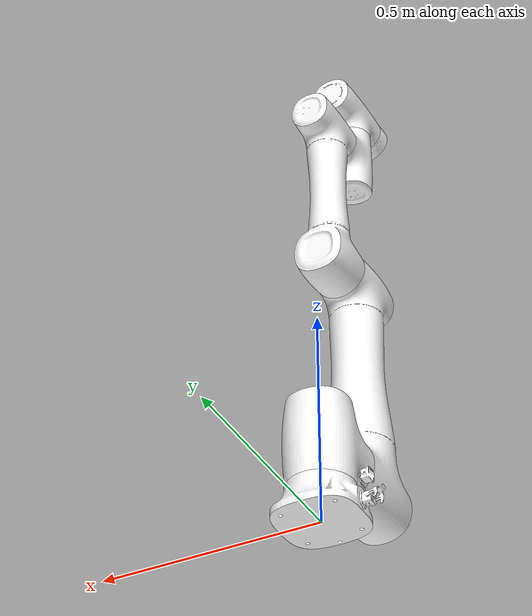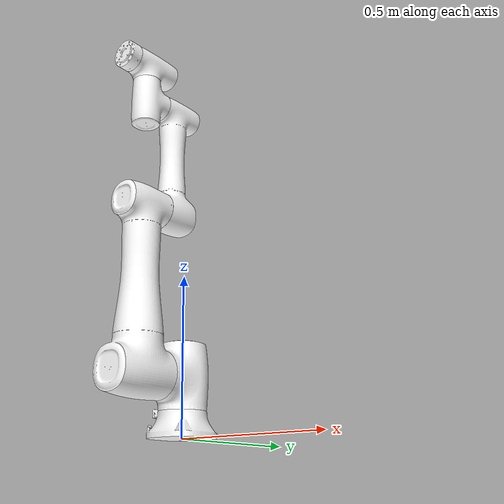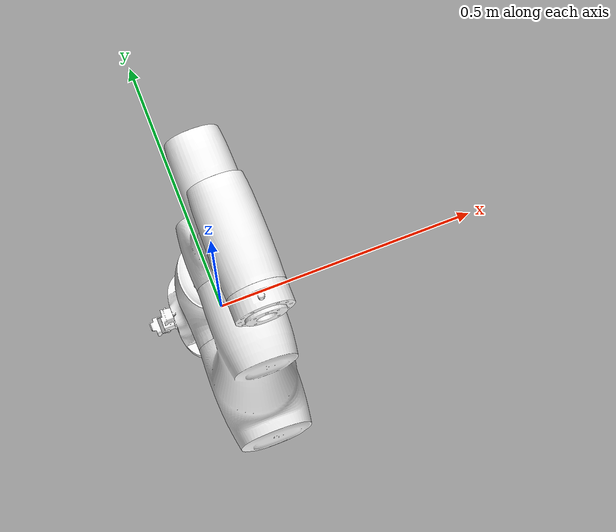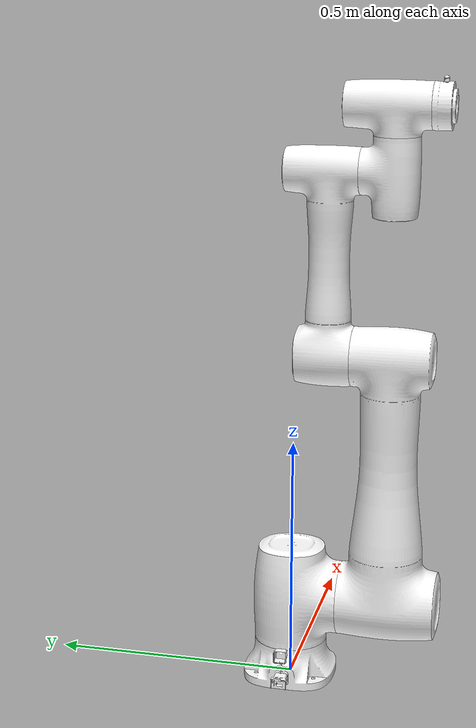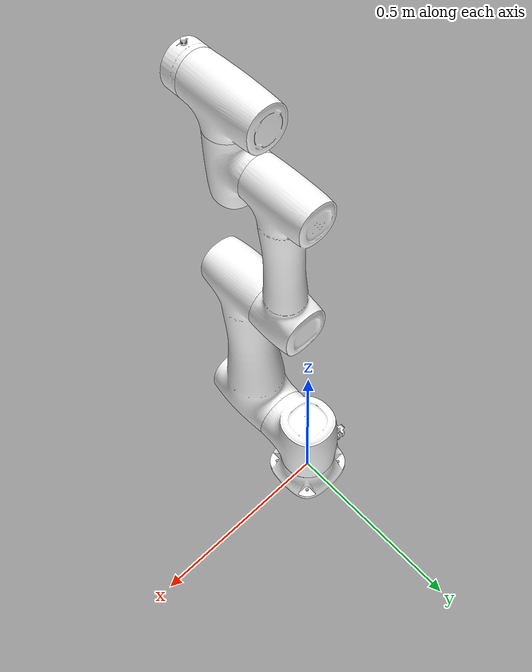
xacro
<?xml version="1.0"?>
<robot name="cr16_robot" xmlns:xacro="http://ros.org/wiki/xacro">
  <link name="dummy_link"/>
  <link
    name="base_link">
    <inertial>
      <origin
        xyz="-0.0017434 -4.7187E-06 0.032774"
        rpy="0 0 0" />
      <mass
        value="1.8265" />
      <inertia
        ixx="0.0041731"
        ixy="5.9313E-07"
        ixz="2.5199E-05"
        iyy="0.0043128"
        iyz="-5.4485E-07"
        izz="0.0067702" />
    </inertial>
    <visual>
      <origin
        xyz="0 0 0"
        rpy="0 0 0" />
      <geometry>
        <mesh
          filename="file://$(find cr_description)/meshes/cr16/base_link.STL"  />
      </geometry>
      <material
        name="">
        <color
          rgba="1 1 1 1" />
      </material>
    </visual>
    <collision>
      <origin
        xyz="0 0 0"
        rpy="0 0 0" />
      <geometry>
        <mesh
          filename="file://$(find cr_description)/meshes/cr16/base_link.STL"/>
      </geometry>
    </collision>
  </link>
  <link  name="world"/>
<joint name="world_joint" type="fixed">
    <parent link="world" />
    <child  link="dummy_link" />
  </joint>

  <joint name="dummy_joint" type="fixed">
    <parent link="dummy_link" />
    <child  link="base_link" />
  </joint>
  <link
    name="Link1">
    <inertial>
      <origin
        xyz="-1.6641E-06 -0.010819 0.0028389"
        rpy="0 0 0" />
      <mass
        value="4.1649" />
      <inertia
        ixx="0.020714"
        ixy="-1.9337E-07"
        ixz="1.6016E-07"
        iyy="0.018824"
        iyz="-9.6732E-05"
        izz="0.014575" />
    </inertial>
    <visual>
      <origin
        xyz="0 0 0"
        rpy="0 0 0" />
      <geometry>
        <mesh
          filename="file://$(find cr_description)/meshes/cr16/Link1.STL" />
      </geometry>
      <material
        name="">
        <color
          rgba="1 1 1 1" />
      </material>
    </visual>
    <collision>
      <origin
        xyz="0 0 0"
        rpy="0 0 0" />
      <geometry>
        <mesh
          filename="file://$(find cr_description)/meshes/cr16/Link1.STL" />
      </geometry>
    </collision>
  </link>
  <joint
    name="joint1"
    type="revolute">
    <origin
      xyz="0 0 0.1765"
      rpy="0 0 0" />
    <parent
      link="base_link" />
    <child
      link="Link1" />
    <axis
      xyz="0 0 1" />
    <limit
      lower="-3.14"
      upper="3.14"
      effort="300"
      velocity="100" />
  </joint>
  <link
    name="Link2">
    <inertial>
      <origin
        xyz="-0.20512 -3.1886E-08 0.19538"
        rpy="0 0 0" />
      <mass
        value="10.222" />
      <inertia
        ixx="0.031498"
        ixy="-8.7366E-08"
        ixz="-0.00021952"
        iyy="0.06945"
        iyz="-1.4472E-07"
        izz="0.062387" />
    </inertial>
    <visual>
      <origin
        xyz="0 0 0"
        rpy="0 0 0" />
      <geometry>
        <mesh
          filename="file://$(find cr_description)/meshes/cr16/Link2.STL"  />
      </geometry>
      <material
        name="">
        <color
          rgba="1 1 1 1" />
      </material>
    </visual>
    <collision>
      <origin
        xyz="0 0 0"
        rpy="0 0 0" />
      <geometry>
        <mesh
          filename="file://$(find cr_description)/meshes/cr16/Link2.STL" />
      </geometry>
    </collision>
  </link>
  <joint
    name="joint2"
    type="revolute">
    <origin
      xyz="0 0 0"
      rpy="1.5708 1.5708 0" />
    <parent
      link="Link1" />
    <child
      link="Link2" />
    <axis
      xyz="0 0 1" />
    <limit
      lower="-3.14"
      upper="3.14"
      effort="300"
      velocity="100" />
  </joint>
  <link
    name="Link3">
    <inertial>
      <origin
        xyz="-0.170200593728399 2.11088122753169E-07 0.0611734146139162"
        rpy="0 0 0" />
      <mass
        value="3.75359417381617" />
      <inertia
        ixx="0.00603810286245228"
        ixy="-6.36208384653473E-08"
        ixz="-5.72052164068317E-05"
        iyy="0.0119444184036258"
        iyz="6.47950646898604E-08"
        izz="0.0107481567947292" />
    </inertial>
    <visual>
      <origin
        xyz="0 0 0"
        rpy="0 0 0" />
      <geometry>
        <mesh
          filename="file://$(find cr_description)/meshes/cr16/Link3.STL" />
      </geometry>
      <material
        name="">
        <color
          rgba="1 1 1 1" />
      </material>
    </visual>
    <collision>
      <origin
        xyz="0 0 0"
        rpy="0 0 0" />
      <geometry>
        <mesh
          filename="file://$(find cr_description)/meshes/cr16/Link3.STL" />
      </geometry>
    </collision>
  </link>
  <joint
    name="joint3"
    type="revolute">
    <origin
      xyz="-0.512 0 0"
      rpy="0 0 0" />
    <parent
      link="Link2" />
    <child
      link="Link3" />
    <axis
      xyz="0 0 1" />
    <limit
      lower="-2.86"
      upper="2.86"
      effort="300"
      velocity="100" />
  </joint>
  <link
    name="Link4">
    <inertial>
      <origin
        xyz="-2.51136414011728E-07 0.00798725336224493 -0.00589074250591318"
        rpy="0 0 0" />
      <mass
        value="1.16884301529359" />
      <inertia
        ixx="0.00292614958206067"
        ixy="8.13393336360205E-09"
        ixz="-8.19039910228418E-09"
        iyy="0.00150053008994198"
        iyz="-5.44925430410846E-05"
        izz="0.00273274970331529" />
    </inertial>
    <visual>
      <origin
        xyz="0 0 0"
        rpy="0 0 0" />
      <geometry>
        <mesh
          filename="file://$(find cr_description)/meshes/cr16/Link4.STL" />
      </geometry>
      <material
        name="">
        <color
          rgba="1 1 1 1" />
      </material>
    </visual>
    <collision>
      <origin
        xyz="0 0 0"
        rpy="0 0 0" />
      <geometry>
        <mesh
          filename="file://$(find cr_description)/meshes/cr16/Link4.STL" />
      </geometry>
    </collision>
  </link>
  <joint
    name="joint4"
    type="revolute">
    <origin
      xyz="-0.363 0 0.191"
      rpy="0 0 -1.5708" />
    <parent
      link="Link3" />
    <child
      link="Link4" />
    <axis
      xyz="0 0 1" />
    <limit
      lower="-3.14"
      upper="3.14"
      effort="300"
      velocity="100" />
  </joint>
  <link
    name="Link5">
    <inertial>
      <origin
        xyz="5.95030917189652E-07 -0.0145467824834555 -0.00454892377987748"
        rpy="0 0 0" />
      <mass
        value="1.22302770181629" />
      <inertia
        ixx="0.00337903895296555"
        ixy="3.44280377037815E-08"
        ixz="-6.93979063565381E-09"
        iyy="0.001492552393115"
        iyz="8.41874314256677E-05"
        izz="0.00323298846154308" />
    </inertial>
    <visual>
      <origin
        xyz="0 0 0"
        rpy="0 0 0" />
      <geometry>
        <mesh
          filename="file://$(find cr_description)/meshes/cr16/Link5.STL" />
      </geometry>
      <material
        name="">
        <color
          rgba="1 1 1 1" />
      </material>
    </visual>
    <collision>
      <origin
        xyz="0 0 0"
        rpy="0 0 0" />
      <geometry>
        <mesh
          filename="file://$(find cr_description)/meshes/cr16/Link5.STL" />
      </geometry>
    </collision>
  </link>
  <joint
    name="joint5"
    type="revolute">
    <origin
      xyz="0 -0.125 0"
      rpy="1.5708 0 0" />
    <parent
      link="Link4" />
    <child
      link="Link5" />
    <axis
      xyz="0 0 1" />
    <limit
      lower="-3.14"
      upper="3.14"
      effort="300"
      velocity="100" />
  </joint>
  <link
    name="Link6">
    <inertial>
      <origin
        xyz="1.26507355792134E-07 2.29654719696715E-05 -0.0205297779952012"
        rpy="0 0 0" />
      <mass
        value="0.205439539605232" />
      <inertia
        ixx="0.000110115415603791"
        ixy="-2.45819491561588E-13"
        ixz="-2.41984454633386E-13"
        iyy="0.000110662465683831"
        iyz="3.68892612776179E-08"
        izz="0.000205184285911954" />
    </inertial>
    <visual>
      <origin
        xyz="0 0 0"
        rpy="0 0 0" />
      <geometry>
        <mesh
          filename="file://$(find cr_description)/meshes/cr16/Link6.STL"/>
      </geometry>
      <material
        name="">
        <color
          rgba="1 1 1 1" />
      </material>
    </visual>
    <collision>
      <origin
        xyz="0 0 0"
        rpy="0 0 0" />
      <geometry>
        <mesh
          filename="file://$(find cr_description)/meshes/cr16/Link6.STL" />
      </geometry>
    </collision>
  </link>
  <joint
    name="joint6"
    type="revolute">
    <origin
      xyz="0 0.1084 0"
      rpy="-1.5708 0 0" />
    <parent
      link="Link5" />
    <child
      link="Link6" />
    <axis
      xyz="0 0 1" />
    <limit
      lower="-6.28"
      upper="6.28"
      effort="300"
      velocity="100" />
  </joint>

 <xacro:macro name="cr16_transmission" params="joint_name">
     <transmission name="${joint_name}_trans">
       <type>transmission_interface/SimpleTransmission</type>
       <joint name="${joint_name}">
         <hardwareInterface>hardware_interface/PositionJointInterface</hardwareInterface>
       </joint>
       <actuator name="${joint_name}_motor">
         <mechanicalReduction>1</mechanicalReduction>
       </actuator>
     </transmission>
 </xacro:macro>

 <xacro:cr16_transmission joint_name="joint1"/>
 <xacro:cr16_transmission joint_name="joint2"/>
 <xacro:cr16_transmission joint_name="joint3"/>
 <xacro:cr16_transmission joint_name="joint4"/>
 <xacro:cr16_transmission joint_name="joint5"/>
 <xacro:cr16_transmission joint_name="joint6"/>
 <!-- ros_control plugin -->
 <gazebo>
     <plugin name="gazebo_ros_control" filename="libgazebo_ros_control.so">
         <robotNamespace>/cr16_robot</robotNamespace>
     </plugin>
 </gazebo>

</robot>
